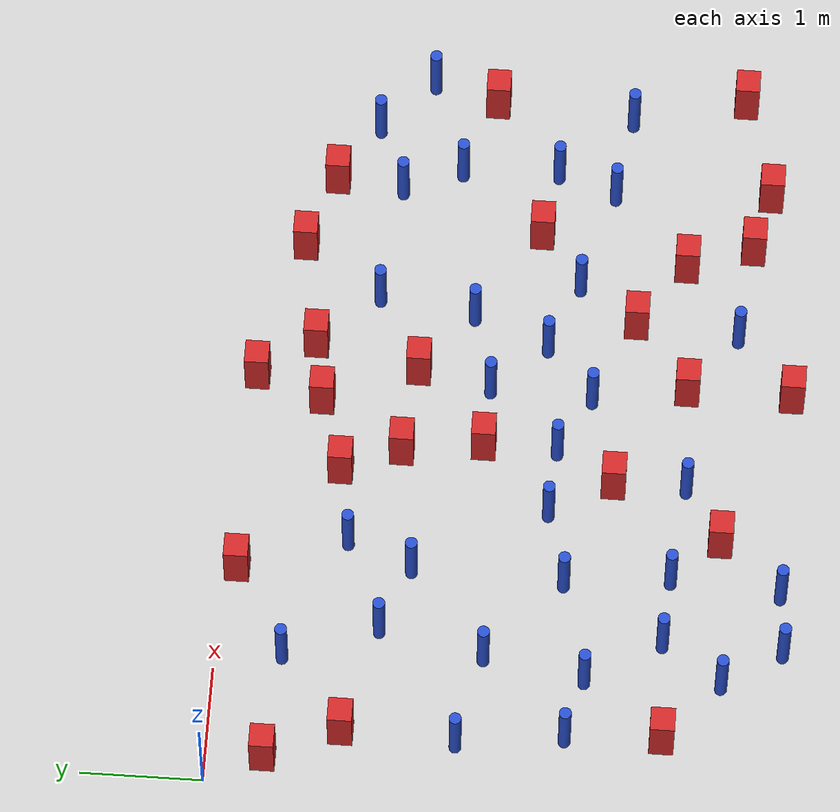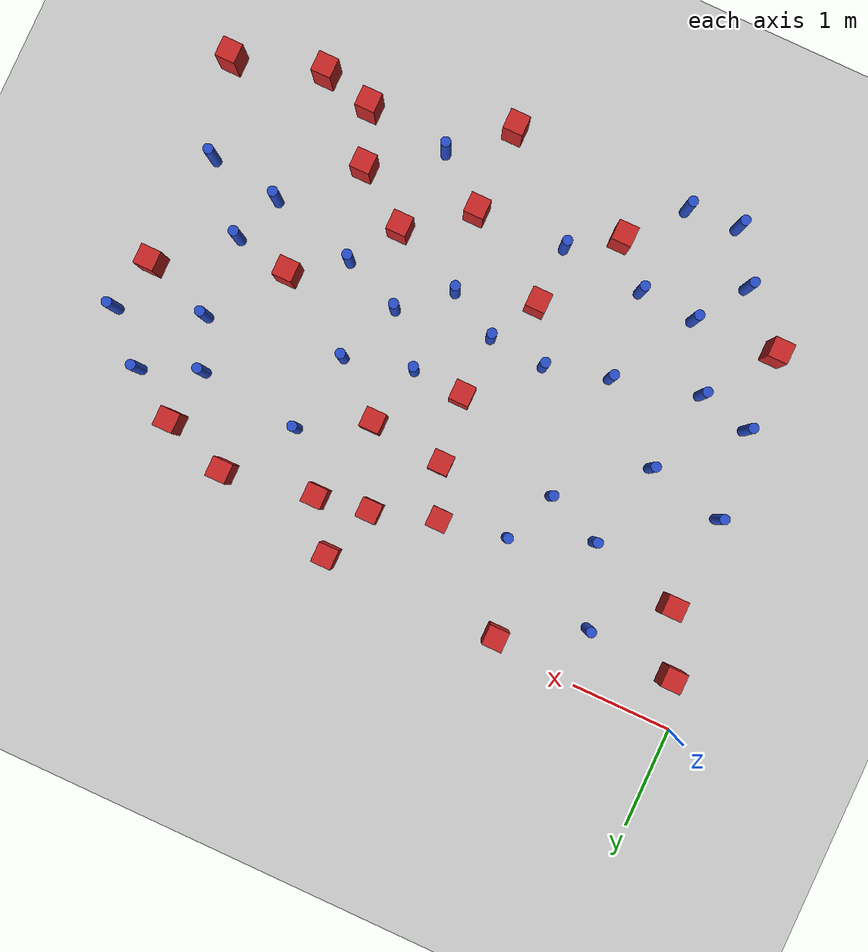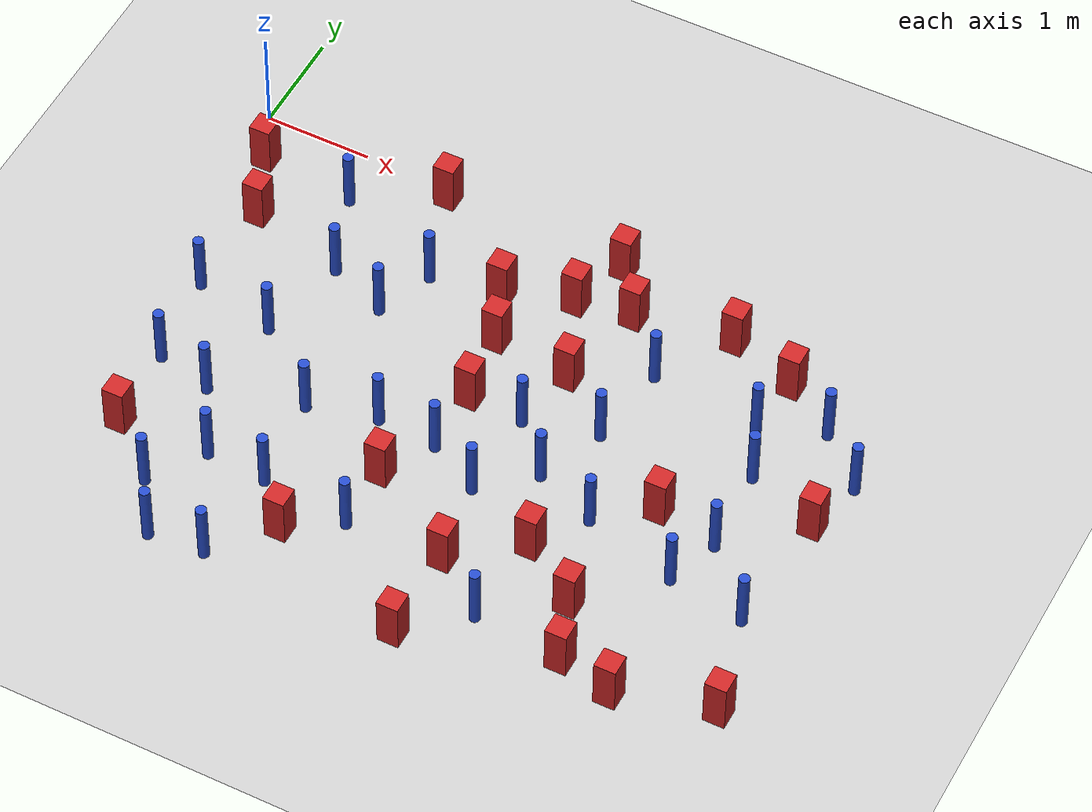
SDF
<sdf version="1.6">
 <world name="default">
  <model name="ground_plane">
   <static>1</static>
   <link name="link">
    <collision name="collision">
     <geometry><plane><normal>0 0 1</normal><size>100 100</size></plane></geometry>
     <surface><friction><ode><mu>100</mu><mu2>50</mu2></ode></friction></surface>
    </collision>
    <visual name="visual">
     <cast_shadows>0</cast_shadows>
     <geometry><plane><normal>0 0 1</normal><size>100 100</size></plane></geometry>
     <material>
      <ambient>1.0 1.0 1.0 1.0</ambient>
      <diffuse>0.8 0.8 0.8 1.0</diffuse>
      <specular>0.01 0.01 0.01 1.000000</specular>
     </material>
    </visual>
   </link>
  </model>
  <model name="square_post_obstacle4">
   <static>true</static>
   <pose>0.591381948 -3.68222701026 1.91545236811e-07 -7.35059704564e-06 1.12565212e-07 2.39332434364e-05</pose>
   <link name="link">
    <pose>0 0 0.25 0 -0 0</pose>
    <inertial>
     <mass>100</mass>
     <inertia>
      <ixx>0.166667</ixx>
      <ixy>0</ixy>
      <ixz>0</ixz>
      <iyy>0.166667</iyy>
      <iyz>0</iyz>
      <izz>0.166667</izz>
     </inertia>
    </inertial>
    <collision name="collision"><geometry><box><size>.2 .2 .5</size></box></geometry></collision>
    <visual name="visual">
     <geometry><box><size>.2 .2 .5</size></box></geometry>
     <material>
      <script><name>Gazebo/Red</name><uri>file://media/materials/scripts/gazebo.material</uri></script>
     </material>
    </visual>
   </link>
  </model>
  <model name="pole_obstacle14">
   <static>true</static>
   <pose>3.11258376095 -2.67955882009 7.38925637345e-09 -8.47170692798e-08 1.24976764939e-08 -1.74513093025e-07</pose>
   <link name="link">
    <pose>0 0 0.3 0 -0 0</pose>
    <inertial>
     <mass>1</mass>
     <inertia><ixx>0.145833</ixx><ixy>0</ixy><ixz>0</ixz><iyy>0.145833</iyy><iyz>0</iyz><izz>0.125</izz></inertia>
    </inertial>
    <collision name="collision">
     <geometry><cylinder><radius>0.05</radius><length>.6</length></cylinder></geometry>
    </collision>
    <visual name="visual">
     <geometry><cylinder><radius>0.05</radius><length>.6</length></cylinder></geometry>
     <material>
      <script><name>Gazebo/Blue</name><uri>file://media/materials/scripts/gazebo.material</uri></script>
     </material>
    </visual>
   </link>
  </model>
  <model name="pole_obstacle28">
   <static>true</static>
   <pose>4.43226692969 -1.12067069874 7.38925637345e-09 -8.471706928e-08 1.24976765134e-08 -1.74513093015e-07</pose>
   <link name="link">
    <pose>0 0 0.3 0 -0 0</pose>
    <inertial>
     <mass>1</mass>
     <inertia><ixx>0.145833</ixx><ixy>0</ixy><ixz>0</ixz><iyy>0.145833</iyy><iyz>0</iyz><izz>0.125</izz></inertia>
    </inertial>
    <collision name="collision">
     <geometry><cylinder><radius>0.05</radius><length>.6</length></cylinder></geometry>
    </collision>
    <visual name="visual">
     <geometry><cylinder><radius>0.05</radius><length>.6</length></cylinder></geometry>
     <material>
      <script><name>Gazebo/Blue</name><uri>file://media/materials/scripts/gazebo.material</uri></script>
     </material>
    </visual>
   </link>
  </model>
  <model name="pole_obstacle37">
   <static>true</static>
   <pose>2.17845702507 -1.01704458703 7.38925637345e-09 -8.471706928e-08 1.2497676513e-08 -1.74513093016e-07</pose>
   <link name="link">
    <pose>0 0 0.3 0 -0 0</pose>
    <inertial>
     <mass>1</mass>
     <inertia><ixx>0.145833</ixx><ixy>0</ixy><ixz>0</ixz><iyy>0.145833</iyy><iyz>0</iyz><izz>0.125</izz></inertia>
    </inertial>
    <collision name="collision">
     <geometry><cylinder><radius>0.05</radius><length>.6</length></cylinder></geometry>
    </collision>
    <visual name="visual">
     <geometry><cylinder><radius>0.05</radius><length>.6</length></cylinder></geometry>
     <material>
      <script><name>Gazebo/Blue</name><uri>file://media/materials/scripts/gazebo.material</uri></script>
     </material>
    </visual>
   </link>
  </model>
  <model name="pole_obstacle39">
   <static>true</static>
   <pose>6.23566429272 -3.13608479678 7.38925637345e-09 -8.47170692798e-08 1.24976764937e-08 -1.74513093023e-07</pose>
   <link name="link">
    <pose>0 0 0.3 0 -0 0</pose>
    <inertial>
     <mass>1</mass>
     <inertia><ixx>0.145833</ixx><ixy>0</ixy><ixz>0</ixz><iyy>0.145833</iyy><iyz>0</iyz><izz>0.125</izz></inertia>
    </inertial>
    <collision name="collision">
     <geometry><cylinder><radius>0.05</radius><length>.6</length></cylinder></geometry>
    </collision>
    <visual name="visual">
     <geometry><cylinder><radius>0.05</radius><length>.6</length></cylinder></geometry>
     <material>
      <script><name>Gazebo/Blue</name><uri>file://media/materials/scripts/gazebo.material</uri></script>
     </material>
    </visual>
   </link>
  </model>
  <model name="pole_obstacle44">
   <static>true</static>
   <pose>1.92040717514 -2.80527896279 7.38925637345e-09 -8.47170692799e-08 1.24976765053e-08 -1.74513093017e-07</pose>
   <link name="link">
    <pose>0 0 0.3 0 -0 0</pose>
    <inertial>
     <mass>1</mass>
     <inertia><ixx>0.145833</ixx><ixy>0</ixy><ixz>0</ixz><iyy>0.145833</iyy><iyz>0</iyz><izz>0.125</izz></inertia>
    </inertial>
    <collision name="collision">
     <geometry><cylinder><radius>0.05</radius><length>.6</length></cylinder></geometry>
    </collision>
    <visual name="visual">
     <geometry><cylinder><radius>0.05</radius><length>.6</length></cylinder></geometry>
     <material>
      <script><name>Gazebo/Blue</name><uri>file://media/materials/scripts/gazebo.material</uri></script>
     </material>
    </visual>
   </link>
  </model>
  <model name="pole_obstacle50">
   <static>true</static>
   <pose>2.00447578282 -3.67813593714 7.38925637345e-09 -8.47170692797e-08 1.24976764891e-08 -1.74513093027e-07</pose>
   <link name="link">
    <pose>0 0 0.3 0 -0 0</pose>
    <inertial>
     <mass>1</mass>
     <inertia><ixx>0.145833</ixx><ixy>0</ixy><ixz>0</ixz><iyy>0.145833</iyy><iyz>0</iyz><izz>0.125</izz></inertia>
    </inertial>
    <collision name="collision">
     <geometry><cylinder><radius>0.05</radius><length>.6</length></cylinder></geometry>
    </collision>
    <visual name="visual">
     <geometry><cylinder><radius>0.05</radius><length>.6</length></cylinder></geometry>
     <material>
      <script><name>Gazebo/Blue</name><uri>file://media/materials/scripts/gazebo.material</uri></script>
     </material>
    </visual>
   </link>
  </model>
  <model name="square_post_obstacle63">
   <static>true</static>
   <pose>3.74047074823 -3.72328140833 1.91545236811e-07 -7.35059704564e-06 1.12565212e-07 2.39332434364e-05</pose>
   <link name="link">
    <pose>0 0 0.25 0 -0 0</pose>
    <inertial>
     <mass>100</mass>
     <inertia>
      <ixx>0.166667</ixx>
      <ixy>0</ixy>
      <ixz>0</ixz>
      <iyy>0.166667</iyy>
      <iyz>0</iyz>
      <izz>0.166667</izz>
     </inertia>
    </inertial>
    <collision name="collision"><geometry><box><size>.2 .2 .5</size></box></geometry></collision>
    <visual name="visual">
     <geometry><box><size>.2 .2 .5</size></box></geometry>
     <material>
      <script><name>Gazebo/Red</name><uri>file://media/materials/scripts/gazebo.material</uri></script>
     </material>
    </visual>
   </link>
  </model>
  <model name="pole_obstacle61">
   <static>true</static>
   <pose>5.52131830112 -3.02730431551 7.38925637345e-09 -8.47170692798e-08 1.24976764937e-08 -1.74513093023e-07</pose>
   <link name="link">
    <pose>0 0 0.3 0 -0 0</pose>
    <inertial>
     <mass>1</mass>
     <inertia><ixx>0.145833</ixx><ixy>0</ixy><ixz>0</ixz><iyy>0.145833</iyy><iyz>0</iyz><izz>0.125</izz></inertia>
    </inertial>
    <collision name="collision">
     <geometry><cylinder><radius>0.05</radius><length>.6</length></cylinder></geometry>
    </collision>
    <visual name="visual">
     <geometry><cylinder><radius>0.05</radius><length>.6</length></cylinder></geometry>
     <material>
      <script><name>Gazebo/Blue</name><uri>file://media/materials/scripts/gazebo.material</uri></script>
     </material>
    </visual>
   </link>
  </model>
  <model name="square_post_obstacle65">
   <static>true</static>
   <pose>3.65642023419 -0.153123214816 1.91545236811e-07 -7.35059704564e-06 1.12565212e-07 2.39332434364e-05</pose>
   <link name="link">
    <pose>0 0 0.25 0 -0 0</pose>
    <inertial>
     <mass>100</mass>
     <inertia>
      <ixx>0.166667</ixx>
      <ixy>0</ixy>
      <ixz>0</ixz>
      <iyy>0.166667</iyy>
      <iyz>0</iyz>
      <izz>0.166667</izz>
     </inertia>
    </inertial>
    <collision name="collision"><geometry><box><size>.2 .2 .5</size></box></geometry></collision>
    <visual name="visual">
     <geometry><box><size>.2 .2 .5</size></box></geometry>
     <material>
      <script><name>Gazebo/Red</name><uri>file://media/materials/scripts/gazebo.material</uri></script>
     </material>
    </visual>
   </link>
  </model>
  <model name="pole_obstacle67">
   <static>true</static>
   <pose>1.40788522867 -1.32780624625 7.38925637345e-09 -8.471706928e-08 1.24976765079e-08 -1.74513093017e-07</pose>
   <link name="link">
    <pose>0 0 0.3 0 -0 0</pose>
    <inertial>
     <mass>1</mass>
     <inertia><ixx>0.145833</ixx><ixy>0</ixy><ixz>0</ixz><iyy>0.145833</iyy><iyz>0</iyz><izz>0.125</izz></inertia>
    </inertial>
    <collision name="collision">
     <geometry><cylinder><radius>0.05</radius><length>.6</length></cylinder></geometry>
    </collision>
    <visual name="visual">
     <geometry><cylinder><radius>0.05</radius><length>.6</length></cylinder></geometry>
     <material>
      <script><name>Gazebo/Blue</name><uri>file://media/materials/scripts/gazebo.material</uri></script>
     </material>
    </visual>
   </link>
  </model>
  <model name="square_post_obstacle71">
   <static>true</static>
   <pose>4.33298151807 -3.26898588142 1.91545236811e-07 -7.35059704564e-06 1.12565212e-07 2.39332434364e-05</pose>
   <link name="link">
    <pose>0 0 0.25 0 -0 0</pose>
    <inertial>
     <mass>100</mass>
     <inertia>
      <ixx>0.166667</ixx>
      <ixy>0</ixy>
      <ixz>0</ixz>
      <iyy>0.166667</iyy>
      <iyz>0</iyz>
      <izz>0.166667</izz>
     </inertia>
    </inertial>
    <collision name="collision"><geometry><box><size>.2 .2 .5</size></box></geometry></collision>
    <visual name="visual">
     <geometry><box><size>.2 .2 .5</size></box></geometry>
     <material>
      <script><name>Gazebo/Red</name><uri>file://media/materials/scripts/gazebo.material</uri></script>
     </material>
    </visual>
   </link>
  </model>
  <model name="square_post_obstacle74">
   <static>true</static>
   <pose>5.602487614 -4.33225980927 1.91545236811e-07 -7.35059704564e-06 1.12565212e-07 2.39332434364e-05</pose>
   <link name="link">
    <pose>0 0 0.25 0 -0 0</pose>
    <inertial>
     <mass>100</mass>
     <inertia>
      <ixx>0.166667</ixx>
      <ixy>0</ixy>
      <ixz>0</ixz>
      <iyy>0.166667</iyy>
      <iyz>0</iyz>
      <izz>0.166667</izz>
     </inertia>
    </inertial>
    <collision name="collision"><geometry><box><size>.2 .2 .5</size></box></geometry></collision>
    <visual name="visual">
     <geometry><box><size>.2 .2 .5</size></box></geometry>
     <material>
      <script><name>Gazebo/Red</name><uri>file://media/materials/scripts/gazebo.material</uri></script>
     </material>
    </visual>
   </link>
  </model>
  <model name="pole_obstacle71">
   <static>true</static>
   <pose>4.3102893246 -1.91938529184 7.38925637345e-09 -8.471706928e-08 1.24976765134e-08 -1.74513093015e-07</pose>
   <link name="link">
    <pose>0 0 0.3 0 -0 0</pose>
    <inertial>
     <mass>1</mass>
     <inertia><ixx>0.145833</ixx><ixy>0</ixy><ixz>0</ixz><iyy>0.145833</iyy><iyz>0</iyz><izz>0.125</izz></inertia>
    </inertial>
    <collision name="collision">
     <geometry><cylinder><radius>0.05</radius><length>.6</length></cylinder></geometry>
    </collision>
    <visual name="visual">
     <geometry><cylinder><radius>0.05</radius><length>.6</length></cylinder></geometry>
     <material>
      <script><name>Gazebo/Blue</name><uri>file://media/materials/scripts/gazebo.material</uri></script>
     </material>
    </visual>
   </link>
  </model>
  <model name="pole_obstacle78">
   <static>true</static>
   <pose>4.2529713792 -4.12390057666 7.38925637345e-09 -8.47170692796e-08 1.24976764786e-08 -1.74513093032e-07</pose>
   <link name="link">
    <pose>0 0 0.3 0 -0 0</pose>
    <inertial>
     <mass>1</mass>
     <inertia><ixx>0.145833</ixx><ixy>0</ixy><ixz>0</ixz><iyy>0.145833</iyy><iyz>0</iyz><izz>0.125</izz></inertia>
    </inertial>
    <collision name="collision">
     <geometry><cylinder><radius>0.05</radius><length>.6</length></cylinder></geometry>
    </collision>
    <visual name="visual">
     <geometry><cylinder><radius>0.05</radius><length>.6</length></cylinder></geometry>
     <material>
      <script><name>Gazebo/Blue</name><uri>file://media/materials/scripts/gazebo.material</uri></script>
     </material>
    </visual>
   </link>
  </model>
  <model name="square_post_obstacle78">
   <static>true</static>
   <pose>6.47995073223 -4.08024581609 1.91545236811e-07 -7.35059704564e-06 1.12565212e-07 2.39332434364e-05</pose>
   <link name="link">
    <pose>0 0 0.25 0 -0 0</pose>
    <inertial>
     <mass>100</mass>
     <inertia>
      <ixx>0.166667</ixx>
      <ixy>0</ixy>
      <ixz>0</ixz>
      <iyy>0.166667</iyy>
      <iyz>0</iyz>
      <izz>0.166667</izz>
     </inertia>
    </inertial>
    <collision name="collision"><geometry><box><size>.2 .2 .5</size></box></geometry></collision>
    <visual name="visual">
     <geometry><box><size>.2 .2 .5</size></box></geometry>
     <material>
      <script><name>Gazebo/Red</name><uri>file://media/materials/scripts/gazebo.material</uri></script>
     </material>
    </visual>
   </link>
  </model>
  <model name="pole_obstacle89">
   <static>true</static>
   <pose>5.66213381733 -1.72991225972 7.38925637345e-09 -8.471706928e-08 1.24976765134e-08 -1.74513093015e-07</pose>
   <link name="link">
    <pose>0 0 0.3 0 -0 0</pose>
    <inertial>
     <mass>1</mass>
     <inertia><ixx>0.145833</ixx><ixy>0</ixy><ixz>0</ixz><iyy>0.145833</iyy><iyz>0</iyz><izz>0.125</izz></inertia>
    </inertial>
    <collision name="collision">
     <geometry><cylinder><radius>0.05</radius><length>.6</length></cylinder></geometry>
    </collision>
    <visual name="visual">
     <geometry><cylinder><radius>0.05</radius><length>.6</length></cylinder></geometry>
     <material>
      <script><name>Gazebo/Blue</name><uri>file://media/materials/scripts/gazebo.material</uri></script>
     </material>
    </visual>
   </link>
  </model>
  <model name="square_post_obstacle88">
   <static>true</static>
   <pose>4.89028319784 -3.65988234122 1.91545236811e-07 -7.35059704564e-06 1.12565212e-07 2.39332434364e-05</pose>
   <link name="link">
    <pose>0 0 0.25 0 -0 0</pose>
    <inertial>
     <mass>100</mass>
     <inertia>
      <ixx>0.166667</ixx>
      <ixy>0</ixy>
      <ixz>0</ixz>
      <iyy>0.166667</iyy>
      <iyz>0</iyz>
      <izz>0.166667</izz>
     </inertia>
    </inertial>
    <collision name="collision"><geometry><box><size>.2 .2 .5</size></box></geometry></collision>
    <visual name="visual">
     <geometry><box><size>.2 .2 .5</size></box></geometry>
     <material>
      <script><name>Gazebo/Red</name><uri>file://media/materials/scripts/gazebo.material</uri></script>
     </material>
    </visual>
   </link>
  </model>
  <model name="pole_obstacle111">
   <static>true</static>
   <pose>3.64526870127 -2.0918814273 7.38925637345e-09 -8.47170692798e-08 1.24976764939e-08 -1.74513093025e-07</pose>
   <link name="link">
    <pose>0 0 0.3 0 -0 0</pose>
    <inertial>
     <mass>1</mass>
     <inertia><ixx>0.145833</ixx><ixy>0</ixy><ixz>0</ixz><iyy>0.145833</iyy><iyz>0</iyz><izz>0.125</izz></inertia>
    </inertial>
    <collision name="collision">
     <geometry><cylinder><radius>0.05</radius><length>.6</length></cylinder></geometry>
    </collision>
    <visual name="visual">
     <geometry><cylinder><radius>0.05</radius><length>.6</length></cylinder></geometry>
     <material>
      <script><name>Gazebo/Blue</name><uri>file://media/materials/scripts/gazebo.material</uri></script>
     </material>
    </visual>
   </link>
  </model>
  <model name="pole_obstacle123">
   <static>true</static>
   <pose>0.436060722084 -2.01464768148 7.38925637345e-09 -8.47170692798e-08 1.24976764954e-08 -1.74513093022e-07</pose>
   <link name="link">
    <pose>0 0 0.3 0 -0 0</pose>
    <inertial>
     <mass>1</mass>
     <inertia><ixx>0.145833</ixx><ixy>0</ixy><ixz>0</ixz><iyy>0.145833</iyy><iyz>0</iyz><izz>0.125</izz></inertia>
    </inertial>
    <collision name="collision">
     <geometry><cylinder><radius>0.05</radius><length>.6</length></cylinder></geometry>
    </collision>
    <visual name="visual">
     <geometry><cylinder><radius>0.05</radius><length>.6</length></cylinder></geometry>
     <material>
      <script><name>Gazebo/Blue</name><uri>file://media/materials/scripts/gazebo.material</uri></script>
     </material>
    </visual>
   </link>
  </model>
  <model name="pole_obstacle125">
   <static>true</static>
   <pose>5.45775709832 -1.23795774924 7.38925637345e-09 -8.471706928e-08 1.24976765134e-08 -1.74513093015e-07</pose>
   <link name="link">
    <pose>0 0 0.3 0 -0 0</pose>
    <inertial>
     <mass>1</mass>
     <inertia><ixx>0.145833</ixx><ixy>0</ixy><ixz>0</ixz><iyy>0.145833</iyy><iyz>0</iyz><izz>0.125</izz></inertia>
    </inertial>
    <collision name="collision">
     <geometry><cylinder><radius>0.05</radius><length>.6</length></cylinder></geometry>
    </collision>
    <visual name="visual">
     <geometry><cylinder><radius>0.05</radius><length>.6</length></cylinder></geometry>
     <material>
      <script><name>Gazebo/Blue</name><uri>file://media/materials/scripts/gazebo.material</uri></script>
     </material>
    </visual>
   </link>
  </model>
  <model name="square_post_obstacle116">
   <static>true</static>
   <pose>3.46116778721 -0.706828195764 1.91545236811e-07 -7.35059704564e-06 1.12565212e-07 2.39332434364e-05</pose>
   <link name="link">
    <pose>0 0 0.25 0 -0 0</pose>
    <inertial>
     <mass>100</mass>
     <inertia>
      <ixx>0.166667</ixx>
      <ixy>0</ixy>
      <ixz>0</ixz>
      <iyy>0.166667</iyy>
      <iyz>0</iyz>
      <izz>0.166667</izz>
     </inertia>
    </inertial>
    <collision name="collision"><geometry><box><size>.2 .2 .5</size></box></geometry></collision>
    <visual name="visual">
     <geometry><box><size>.2 .2 .5</size></box></geometry>
     <material>
      <script><name>Gazebo/Red</name><uri>file://media/materials/scripts/gazebo.material</uri></script>
     </material>
    </visual>
   </link>
  </model>
  <model name="pole_obstacle136">
   <static>true</static>
   <pose>2.54762614891 -2.64150156869 7.38925637345e-09 -8.47170692798e-08 1.24976764939e-08 -1.74513093025e-07</pose>
   <link name="link">
    <pose>0 0 0.3 0 -0 0</pose>
    <inertial>
     <mass>1</mass>
     <inertia><ixx>0.145833</ixx><ixy>0</ixy><ixz>0</ixz><iyy>0.145833</iyy><iyz>0</iyz><izz>0.125</izz></inertia>
    </inertial>
    <collision name="collision">
     <geometry><cylinder><radius>0.05</radius><length>.6</length></cylinder></geometry>
    </collision>
    <visual name="visual">
     <geometry><cylinder><radius>0.05</radius><length>.6</length></cylinder></geometry>
     <material>
      <script><name>Gazebo/Blue</name><uri>file://media/materials/scripts/gazebo.material</uri></script>
     </material>
    </visual>
   </link>
  </model>
  <model name="square_post_obstacle121">
   <static>true</static>
   <pose>3.98112811571 -0.620218554285 1.91545236811e-07 -7.35059704564e-06 1.12565212e-07 2.39332434364e-05</pose>
   <link name="link">
    <pose>0 0 0.25 0 -0 0</pose>
    <inertial>
     <mass>100</mass>
     <inertia>
      <ixx>0.166667</ixx>
      <ixy>0</ixy>
      <ixz>0</ixz>
      <iyy>0.166667</iyy>
      <iyz>0</iyz>
      <izz>0.166667</izz>
     </inertia>
    </inertial>
    <collision name="collision"><geometry><box><size>.2 .2 .5</size></box></geometry></collision>
    <visual name="visual">
     <geometry><box><size>.2 .2 .5</size></box></geometry>
     <material>
      <script><name>Gazebo/Red</name><uri>file://media/materials/scripts/gazebo.material</uri></script>
     </material>
    </visual>
   </link>
  </model>
  <model name="square_post_obstacle122">
   <static>true</static>
   <pose>0.224615007999 -0.467737239477 1.91545236811e-07 -7.35059704564e-06 1.12565212e-07 2.39332434364e-05</pose>
   <link name="link">
    <pose>0 0 0.25 0 -0 0</pose>
    <inertial>
     <mass>100</mass>
     <inertia>
      <ixx>0.166667</ixx>
      <ixy>0</ixy>
      <ixz>0</ixz>
      <iyy>0.166667</iyy>
      <iyz>0</iyz>
      <izz>0.166667</izz>
     </inertia>
    </inertial>
    <collision name="collision"><geometry><box><size>.2 .2 .5</size></box></geometry></collision>
    <visual name="visual">
     <geometry><box><size>.2 .2 .5</size></box></geometry>
     <material>
      <script><name>Gazebo/Red</name><uri>file://media/materials/scripts/gazebo.material</uri></script>
     </material>
    </visual>
   </link>
  </model>
  <model name="pole_obstacle139">
   <static>true</static>
   <pose>5.69550595124 -2.53905012527 7.38925637345e-09 -8.47170692798e-08 1.24976764937e-08 -1.74513093023e-07</pose>
   <link name="link">
    <pose>0 0 0.3 0 -0 0</pose>
    <inertial>
     <mass>1</mass>
     <inertia><ixx>0.145833</ixx><ixy>0</ixy><ixz>0</ixz><iyy>0.145833</iyy><iyz>0</iyz><izz>0.125</izz></inertia>
    </inertial>
    <collision name="collision">
     <geometry><cylinder><radius>0.05</radius><length>.6</length></cylinder></geometry>
    </collision>
    <visual name="visual">
     <geometry><cylinder><radius>0.05</radius><length>.6</length></cylinder></geometry>
     <material>
      <script><name>Gazebo/Blue</name><uri>file://media/materials/scripts/gazebo.material</uri></script>
     </material>
    </visual>
   </link>
  </model>
  <model name="pole_obstacle145">
   <static>true</static>
   <pose>1.12244461927 -0.552726503955 7.38925637345e-09 -8.47170692799e-08 1.24976765075e-08 -1.74513093017e-07</pose>
   <link name="link">
    <pose>0 0 0.3 0 -0 0</pose>
    <inertial>
     <mass>1</mass>
     <inertia><ixx>0.145833</ixx><ixy>0</ixy><ixz>0</ixz><iyy>0.145833</iyy><iyz>0</iyz><izz>0.125</izz></inertia>
    </inertial>
    <collision name="collision">
     <geometry><cylinder><radius>0.05</radius><length>.6</length></cylinder></geometry>
    </collision>
    <visual name="visual">
     <geometry><cylinder><radius>0.05</radius><length>.6</length></cylinder></geometry>
     <material>
      <script><name>Gazebo/Blue</name><uri>file://media/materials/scripts/gazebo.material</uri></script>
     </material>
    </visual>
   </link>
  </model>
  <model name="pole_obstacle148">
   <static>true</static>
   <pose>1.09506958815 -4.13864734297 7.38925637345e-09 -8.47170692799e-08 1.24976765033e-08 -1.74513093018e-07</pose>
   <link name="link">
    <pose>0 0 0.3 0 -0 0</pose>
    <inertial>
     <mass>1</mass>
     <inertia><ixx>0.145833</ixx><ixy>0</ixy><ixz>0</ixz><iyy>0.145833</iyy><iyz>0</iyz><izz>0.125</izz></inertia>
    </inertial>
    <collision name="collision">
     <geometry><cylinder><radius>0.05</radius><length>.6</length></cylinder></geometry>
    </collision>
    <visual name="visual">
     <geometry><cylinder><radius>0.05</radius><length>.6</length></cylinder></geometry>
     <material>
      <script><name>Gazebo/Blue</name><uri>file://media/materials/scripts/gazebo.material</uri></script>
     </material>
    </visual>
   </link>
  </model>
  <model name="square_post_obstacle137">
   <static>true</static>
   <pose>5.12151186016 -2.43352549917 1.91545236811e-07 -7.35059704564e-06 1.12565212e-07 2.39332434364e-05</pose>
   <link name="link">
    <pose>0 0 0.25 0 -0 0</pose>
    <inertial>
     <mass>100</mass>
     <inertia>
      <ixx>0.166667</ixx>
      <ixy>0</ixy>
      <ixz>0</ixz>
      <iyy>0.166667</iyy>
      <iyz>0</iyz>
      <izz>0.166667</izz>
     </inertia>
    </inertial>
    <collision name="collision"><geometry><box><size>.2 .2 .5</size></box></geometry></collision>
    <visual name="visual">
     <geometry><box><size>.2 .2 .5</size></box></geometry>
     <material>
      <script><name>Gazebo/Red</name><uri>file://media/materials/scripts/gazebo.material</uri></script>
     </material>
    </visual>
   </link>
  </model>
  <model name="pole_obstacle149">
   <static>true</static>
   <pose>6.03105329881 -1.00898455496 7.38925637345e-09 -8.471706928e-08 1.24976765101e-08 -1.74513093015e-07</pose>
   <link name="link">
    <pose>0 0 0.3 0 -0 0</pose>
    <inertial>
     <mass>1</mass>
     <inertia><ixx>0.145833</ixx><ixy>0</ixy><ixz>0</ixz><iyy>0.145833</iyy><iyz>0</iyz><izz>0.125</izz></inertia>
    </inertial>
    <collision name="collision">
     <geometry><cylinder><radius>0.05</radius><length>.6</length></cylinder></geometry>
    </collision>
    <visual name="visual">
     <geometry><cylinder><radius>0.05</radius><length>.6</length></cylinder></geometry>
     <material>
      <script><name>Gazebo/Blue</name><uri>file://media/materials/scripts/gazebo.material</uri></script>
     </material>
    </visual>
   </link>
  </model>
  <model name="pole_obstacle153">
   <static>true</static>
   <pose>1.96225716609 -1.55211361322 7.38925637345e-09 -8.47170692795e-08 1.24976764702e-08 -1.74513093038e-07</pose>
   <link name="link">
    <pose>0 0 0.3 0 -0 0</pose>
    <inertial>
     <mass>1</mass>
     <inertia><ixx>0.145833</ixx><ixy>0</ixy><ixz>0</ixz><iyy>0.145833</iyy><iyz>0</iyz><izz>0.125</izz></inertia>
    </inertial>
    <collision name="collision">
     <geometry><cylinder><radius>0.05</radius><length>.6</length></cylinder></geometry>
    </collision>
    <visual name="visual">
     <geometry><cylinder><radius>0.05</radius><length>.6</length></cylinder></geometry>
     <material>
      <script><name>Gazebo/Blue</name><uri>file://media/materials/scripts/gazebo.material</uri></script>
     </material>
    </visual>
   </link>
  </model>
  <model name="pole_obstacle155">
   <static>true</static>
   <pose>1.92795217252 -4.58420670718 7.38925637345e-09 -8.47170692799e-08 1.24976765033e-08 -1.74513093018e-07</pose>
   <link name="link">
    <pose>0 0 0.3 0 -0 0</pose>
    <inertial>
     <mass>1</mass>
     <inertia><ixx>0.145833</ixx><ixy>0</ixy><ixz>0</ixz><iyy>0.145833</iyy><iyz>0</iyz><izz>0.125</izz></inertia>
    </inertial>
    <collision name="collision">
     <geometry><cylinder><radius>0.05</radius><length>.6</length></cylinder></geometry>
    </collision>
    <visual name="visual">
     <geometry><cylinder><radius>0.05</radius><length>.6</length></cylinder></geometry>
     <material>
      <script><name>Gazebo/Blue</name><uri>file://media/materials/scripts/gazebo.material</uri></script>
     </material>
    </visual>
   </link>
  </model>
  <model name="square_post_obstacle146">
   <static>true</static>
   <pose>3.12995072762 -2.06890703029 1.91545236811e-07 -7.35059704564e-06 1.12565212e-07 2.39332434364e-05</pose>
   <link name="link">
    <pose>0 0 0.25 0 -0 0</pose>
    <inertial>
     <mass>100</mass>
     <inertia>
      <ixx>0.166667</ixx>
      <ixy>0</ixy>
      <ixz>0</ixz>
      <iyy>0.166667</iyy>
      <iyz>0</iyz>
      <izz>0.166667</izz>
     </inertia>
    </inertial>
    <collision name="collision"><geometry><box><size>.2 .2 .5</size></box></geometry></collision>
    <visual name="visual">
     <geometry><box><size>.2 .2 .5</size></box></geometry>
     <material>
      <script><name>Gazebo/Red</name><uri>file://media/materials/scripts/gazebo.material</uri></script>
     </material>
    </visual>
   </link>
  </model>
  <model name="square_post_obstacle151">
   <static>true</static>
   <pose>3.73533360632 -4.5928505232 1.91545236811e-07 -7.35059704564e-06 1.12565212e-07 2.39332434364e-05</pose>
   <link name="link">
    <pose>0 0 0.25 0 -0 0</pose>
    <inertial>
     <mass>100</mass>
     <inertia>
      <ixx>0.166667</ixx>
      <ixy>0</ixy>
      <ixz>0</ixz>
      <iyy>0.166667</iyy>
      <iyz>0</iyz>
      <izz>0.166667</izz>
     </inertia>
    </inertial>
    <collision name="collision"><geometry><box><size>.2 .2 .5</size></box></geometry></collision>
    <visual name="visual">
     <geometry><box><size>.2 .2 .5</size></box></geometry>
     <material>
      <script><name>Gazebo/Red</name><uri>file://media/materials/scripts/gazebo.material</uri></script>
     </material>
    </visual>
   </link>
  </model>
  <model name="pole_obstacle159">
   <static>true</static>
   <pose>0.54365463091 -2.89551934115 7.38925637345e-09 -8.471706928e-08 1.2497676512e-08 -1.74513093015e-07</pose>
   <link name="link">
    <pose>0 0 0.3 0 -0 0</pose>
    <inertial>
     <mass>1</mass>
     <inertia><ixx>0.145833</ixx><ixy>0</ixy><ixz>0</ixz><iyy>0.145833</iyy><iyz>0</iyz><izz>0.125</izz></inertia>
    </inertial>
    <collision name="collision">
     <geometry><cylinder><radius>0.05</radius><length>.6</length></cylinder></geometry>
    </collision>
    <visual name="visual">
     <geometry><cylinder><radius>0.05</radius><length>.6</length></cylinder></geometry>
     <material>
      <script><name>Gazebo/Blue</name><uri>file://media/materials/scripts/gazebo.material</uri></script>
     </material>
    </visual>
   </link>
  </model>
  <model name="square_post_obstacle158">
   <static>true</static>
   <pose>6.34246900201 -1.98447304851 1.91545236811e-07 -7.35059704564e-06 1.12565212e-07 2.39332434364e-05</pose>
   <link name="link">
    <pose>0 0 0.25 0 -0 0</pose>
    <inertial>
     <mass>100</mass>
     <inertia>
      <ixx>0.166667</ixx>
      <ixy>0</ixy>
      <ixz>0</ixz>
      <iyy>0.166667</iyy>
      <iyz>0</iyz>
      <izz>0.166667</izz>
     </inertia>
    </inertial>
    <collision name="collision"><geometry><box><size>.2 .2 .5</size></box></geometry></collision>
    <visual name="visual">
     <geometry><box><size>.2 .2 .5</size></box></geometry>
     <material>
      <script><name>Gazebo/Red</name><uri>file://media/materials/scripts/gazebo.material</uri></script>
     </material>
    </visual>
   </link>
  </model>
  <model name="square_post_obstacle159">
   <static>true</static>
   <pose>0.494212178846 -1.0802834762 1.91545236811e-07 -7.35059704564e-06 1.12565212e-07 2.39332434364e-05</pose>
   <link name="link">
    <pose>0 0 0.25 0 -0 0</pose>
    <inertial>
     <mass>100</mass>
     <inertia>
      <ixx>0.166667</ixx>
      <ixy>0</ixy>
      <ixz>0</ixz>
      <iyy>0.166667</iyy>
      <iyz>0</iyz>
      <izz>0.166667</izz>
     </inertia>
    </inertial>
    <collision name="collision"><geometry><box><size>.2 .2 .5</size></box></geometry></collision>
    <visual name="visual">
     <geometry><box><size>.2 .2 .5</size></box></geometry>
     <material>
      <script><name>Gazebo/Red</name><uri>file://media/materials/scripts/gazebo.material</uri></script>
     </material>
    </visual>
   </link>
  </model>
  <model name="pole_obstacle170">
   <static>true</static>
   <pose>1.41088406296 -4.62848880067 7.38925637345e-09 -8.47170692799e-08 1.24976765033e-08 -1.74513093018e-07</pose>
   <link name="link">
    <pose>0 0 0.3 0 -0 0</pose>
    <inertial>
     <mass>1</mass>
     <inertia><ixx>0.145833</ixx><ixy>0</ixy><ixz>0</ixz><iyy>0.145833</iyy><iyz>0</iyz><izz>0.125</izz></inertia>
    </inertial>
    <collision name="collision">
     <geometry><cylinder><radius>0.05</radius><length>.6</length></cylinder></geometry>
    </collision>
    <visual name="visual">
     <geometry><cylinder><radius>0.05</radius><length>.6</length></cylinder></geometry>
     <material>
      <script><name>Gazebo/Blue</name><uri>file://media/materials/scripts/gazebo.material</uri></script>
     </material>
    </visual>
   </link>
  </model>
  <model name="pole_obstacle172">
   <static>true</static>
   <pose>4.64447816289 -2.78252453834 7.38925637345e-09 -8.47170692798e-08 1.24976764937e-08 -1.74513093023e-07</pose>
   <link name="link">
    <pose>0 0 0.3 0 -0 0</pose>
    <inertial>
     <mass>1</mass>
     <inertia><ixx>0.145833</ixx><ixy>0</ixy><ixz>0</ixz><iyy>0.145833</iyy><iyz>0</iyz><izz>0.125</izz></inertia>
    </inertial>
    <collision name="collision">
     <geometry><cylinder><radius>0.05</radius><length>.6</length></cylinder></geometry>
    </collision>
    <visual name="visual">
     <geometry><cylinder><radius>0.05</radius><length>.6</length></cylinder></geometry>
     <material>
      <script><name>Gazebo/Blue</name><uri>file://media/materials/scripts/gazebo.material</uri></script>
     </material>
    </visual>
   </link>
  </model>
  <model name="square_post_obstacle168">
   <static>true</static>
   <pose>2.37391441477 -4.06859270686 1.91545236811e-07 -7.35059704564e-06 1.12565212e-07 2.39332434364e-05</pose>
   <link name="link">
    <pose>0 0 0.25 0 -0 0</pose>
    <inertial>
     <mass>100</mass>
     <inertia>
      <ixx>0.166667</ixx>
      <ixy>0</ixy>
      <ixz>0</ixz>
      <iyy>0.166667</iyy>
      <iyz>0</iyz>
      <izz>0.166667</izz>
     </inertia>
    </inertial>
    <collision name="collision"><geometry><box><size>.2 .2 .5</size></box></geometry></collision>
    <visual name="visual">
     <geometry><box><size>.2 .2 .5</size></box></geometry>
     <material>
      <script><name>Gazebo/Red</name><uri>file://media/materials/scripts/gazebo.material</uri></script>
     </material>
    </visual>
   </link>
  </model>
  <model name="square_post_obstacle169">
   <static>true</static>
   <pose>3.03900577812 -1.39690278435 1.91545236811e-07 -7.35059704564e-06 1.12565212e-07 2.39332434364e-05</pose>
   <link name="link">
    <pose>0 0 0.25 0 -0 0</pose>
    <inertial>
     <mass>100</mass>
     <inertia>
      <ixx>0.166667</ixx>
      <ixy>0</ixy>
      <ixz>0</ixz>
      <iyy>0.166667</iyy>
      <iyz>0</iyz>
      <izz>0.166667</izz>
     </inertia>
    </inertial>
    <collision name="collision"><geometry><box><size>.2 .2 .5</size></box></geometry></collision>
    <visual name="visual">
     <geometry><box><size>.2 .2 .5</size></box></geometry>
     <material>
      <script><name>Gazebo/Red</name><uri>file://media/materials/scripts/gazebo.material</uri></script>
     </material>
    </visual>
   </link>
  </model>
  <model name="square_post_obstacle172">
   <static>true</static>
   <pose>3.78403927257 -1.48698105482 1.91545236811e-07 -7.35059704564e-06 1.12565212e-07 2.39332434364e-05</pose>
   <link name="link">
    <pose>0 0 0.25 0 -0 0</pose>
    <inertial>
     <mass>100</mass>
     <inertia>
      <ixx>0.166667</ixx>
      <ixy>0</ixy>
      <ixz>0</ixz>
      <iyy>0.166667</iyy>
      <iyz>0</iyz>
      <izz>0.166667</izz>
     </inertia>
    </inertial>
    <collision name="collision"><geometry><box><size>.2 .2 .5</size></box></geometry></collision>
    <visual name="visual">
     <geometry><box><size>.2 .2 .5</size></box></geometry>
     <material>
      <script><name>Gazebo/Red</name><uri>file://media/materials/scripts/gazebo.material</uri></script>
     </material>
    </visual>
   </link>
  </model>
  <model name="pole_obstacle186">
   <static>true</static>
   <pose>3.60586651732 -2.93990961178 7.38925637345e-09 -8.47170692798e-08 1.24976764939e-08 -1.74513093025e-07</pose>
   <link name="link">
    <pose>0 0 0.3 0 -0 0</pose>
    <inertial>
     <mass>1</mass>
     <inertia><ixx>0.145833</ixx><ixy>0</ixy><ixz>0</ixz><iyy>0.145833</iyy><iyz>0</iyz><izz>0.125</izz></inertia>
    </inertial>
    <collision name="collision">
     <geometry><cylinder><radius>0.05</radius><length>.6</length></cylinder></geometry>
    </collision>
    <visual name="visual">
     <geometry><cylinder><radius>0.05</radius><length>.6</length></cylinder></geometry>
     <material>
      <script><name>Gazebo/Blue</name><uri>file://media/materials/scripts/gazebo.material</uri></script>
     </material>
    </visual>
   </link>
  </model>
  <model name="square_post_obstacle181">
   <static>true</static>
   <pose>5.09072068283 -4.20748721131 1.91545236811e-07 -7.35059704564e-06 1.12565212e-07 2.39332434364e-05</pose>
   <link name="link">
    <pose>0 0 0.25 0 -0 0</pose>
    <inertial>
     <mass>100</mass>
     <inertia>
      <ixx>0.166667</ixx>
      <ixy>0</ixy>
      <ixz>0</ixz>
      <iyy>0.166667</iyy>
      <iyz>0</iyz>
      <izz>0.166667</izz>
     </inertia>
    </inertial>
    <collision name="collision"><geometry><box><size>.2 .2 .5</size></box></geometry></collision>
    <visual name="visual">
     <geometry><box><size>.2 .2 .5</size></box></geometry>
     <material>
      <script><name>Gazebo/Red</name><uri>file://media/materials/scripts/gazebo.material</uri></script>
     </material>
    </visual>
   </link>
  </model>
  <model name="square_post_obstacle184">
   <static>true</static>
   <pose>1.89184069523 -0.124675895338 1.91545236811e-07 -7.35059704564e-06 1.12565212e-07 2.39332434364e-05</pose>
   <link name="link">
    <pose>0 0 0.25 0 -0 0</pose>
    <inertial>
     <mass>100</mass>
     <inertia>
      <ixx>0.166667</ixx>
      <ixy>0</ixy>
      <ixz>0</ixz>
      <iyy>0.166667</iyy>
      <iyz>0</iyz>
      <izz>0.166667</izz>
     </inertia>
    </inertial>
    <collision name="collision"><geometry><box><size>.2 .2 .5</size></box></geometry></collision>
    <visual name="visual">
     <geometry><box><size>.2 .2 .5</size></box></geometry>
     <material>
      <script><name>Gazebo/Red</name><uri>file://media/materials/scripts/gazebo.material</uri></script>
     </material>
    </visual>
   </link>
  </model>
  <model name="square_post_obstacle188">
   <static>true</static>
   <pose>5.53208893283 -0.684428726055 1.91545236811e-07 -7.35059704564e-06 1.12565212e-07 2.39332434364e-05</pose>
   <link name="link">
    <pose>0 0 0.25 0 -0 0</pose>
    <inertial>
     <mass>100</mass>
     <inertia>
      <ixx>0.166667</ixx>
      <ixy>0</ixy>
      <ixz>0</ixz>
      <iyy>0.166667</iyy>
      <iyz>0</iyz>
      <izz>0.166667</izz>
     </inertia>
    </inertial>
    <collision name="collision"><geometry><box><size>.2 .2 .5</size></box></geometry></collision>
    <visual name="visual">
     <geometry><box><size>.2 .2 .5</size></box></geometry>
     <material>
      <script><name>Gazebo/Red</name><uri>file://media/materials/scripts/gazebo.material</uri></script>
     </material>
    </visual>
   </link>
  </model>
  <model name="square_post_obstacle190">
   <static>true</static>
   <pose>4.8881999227 -0.46401866342 1.91545236811e-07 -7.35059704564e-06 1.12565212e-07 2.39332434364e-05</pose>
   <link name="link">
    <pose>0 0 0.25 0 -0 0</pose>
    <inertial>
     <mass>100</mass>
     <inertia>
      <ixx>0.166667</ixx>
      <ixy>0</ixy>
      <ixz>0</ixz>
      <iyy>0.166667</iyy>
      <iyz>0</iyz>
      <izz>0.166667</izz>
     </inertia>
    </inertial>
    <collision name="collision"><geometry><box><size>.2 .2 .5</size></box></geometry></collision>
    <visual name="visual">
     <geometry><box><size>.2 .2 .5</size></box></geometry>
     <material>
      <script><name>Gazebo/Red</name><uri>file://media/materials/scripts/gazebo.material</uri></script>
     </material>
    </visual>
   </link>
  </model>
  <model name="square_post_obstacle199">
   <static>true</static>
   <pose>2.8462495462 -3.1610874959 1.91545236811e-07 -7.35059704564e-06 1.12565212e-07 2.39332434364e-05</pose>
   <link name="link">
    <pose>0 0 0.25 0 -0 0</pose>
    <inertial>
     <mass>100</mass>
     <inertia>
      <ixx>0.166667</ixx>
      <ixy>0</ixy>
      <ixz>0</ixz>
      <iyy>0.166667</iyy>
      <iyz>0</iyz>
      <izz>0.166667</izz>
     </inertia>
    </inertial>
    <collision name="collision"><geometry><box><size>.2 .2 .5</size></box></geometry></collision>
    <visual name="visual">
     <geometry><box><size>.2 .2 .5</size></box></geometry>
     <material>
      <script><name>Gazebo/Red</name><uri>file://media/materials/scripts/gazebo.material</uri></script>
     </material>
    </visual>
   </link>
  </model>
  <model name="pole_obstacle189">
   <static>true</static>
   <pose>1.06786792385 -3.0232465063 7.38925637345e-09 -8.47170692799e-08 1.24976765053e-08 -1.74513093017e-07</pose>
   <link name="link">
    <pose>0 0 0.3 0 -0 0</pose>
    <inertial>
     <mass>1</mass>
     <inertia><ixx>0.145833</ixx><ixy>0</ixy><ixz>0</ixz><iyy>0.145833</iyy><iyz>0</iyz><izz>0.125</izz></inertia>
    </inertial>
    <collision name="collision">
     <geometry><cylinder><radius>0.05</radius><length>.6</length></cylinder></geometry>
    </collision>
    <visual name="visual">
     <geometry><cylinder><radius>0.05</radius><length>.6</length></cylinder></geometry>
     <material>
      <script><name>Gazebo/Blue</name><uri>file://media/materials/scripts/gazebo.material</uri></script>
     </material>
    </visual>
   </link>
  </model>
  <model name="pole_obstacle190">
   <static>true</static>
   <pose>1.21441900862 -2.19112529083 7.38925637345e-09 -8.47170692799e-08 1.24976765053e-08 -1.74513093017e-07</pose>
   <link name="link">
    <pose>0 0 0.3 0 -0 0</pose>
    <inertial>
     <mass>1</mass>
     <inertia><ixx>0.145833</ixx><ixy>0</ixy><ixz>0</ixz><iyy>0.145833</iyy><iyz>0</iyz><izz>0.125</izz></inertia>
    </inertial>
    <collision name="collision">
     <geometry><cylinder><radius>0.05</radius><length>.6</length></cylinder></geometry>
    </collision>
    <visual name="visual">
     <geometry><cylinder><radius>0.05</radius><length>.6</length></cylinder></geometry>
     <material>
      <script><name>Gazebo/Blue</name><uri>file://media/materials/scripts/gazebo.material</uri></script>
     </material>
    </visual>
   </link>
  </model>
  <model name="pole_obstacle192">
   <static>true</static>
   <pose>4.05769171703 -2.54661487843 7.38925637345e-09 -8.47170692798e-08 1.24976764937e-08 -1.74513093023e-07</pose>
   <link name="link">
    <pose>0 0 0.3 0 -0 0</pose>
    <inertial>
     <mass>1</mass>
     <inertia><ixx>0.145833</ixx><ixy>0</ixy><ixz>0</ixz><iyy>0.145833</iyy><iyz>0</iyz><izz>0.125</izz></inertia>
    </inertial>
    <collision name="collision">
     <geometry><cylinder><radius>0.05</radius><length>.6</length></cylinder></geometry>
    </collision>
    <visual name="visual">
     <geometry><cylinder><radius>0.05</radius><length>.6</length></cylinder></geometry>
     <material>
      <script><name>Gazebo/Blue</name><uri>file://media/materials/scripts/gazebo.material</uri></script>
     </material>
    </visual>
   </link>
  </model>
  <model name="pole_obstacle203">
   <static>true</static>
   <pose>2.8373677384 -3.76203940073 7.38925637345e-09 -8.47170692798e-08 1.24976764939e-08 -1.74513093025e-07</pose>
   <link name="link">
    <pose>0 0 0.3 0 -0 0</pose>
    <inertial>
     <mass>1</mass>
     <inertia><ixx>0.145833</ixx><ixy>0</ixy><ixz>0</ixz><iyy>0.145833</iyy><iyz>0</iyz><izz>0.125</izz></inertia>
    </inertial>
    <collision name="collision">
     <geometry><cylinder><radius>0.05</radius><length>.6</length></cylinder></geometry>
    </collision>
    <visual name="visual">
     <geometry><cylinder><radius>0.05</radius><length>.6</length></cylinder></geometry>
     <material>
      <script><name>Gazebo/Blue</name><uri>file://media/materials/scripts/gazebo.material</uri></script>
     </material>
    </visual>
   </link>
  </model>
  <model name="pole_obstacle207">
   <static>true</static>
   <pose>6.48299482184 -1.44400174992 7.38925637345e-09 -8.471706928e-08 1.24976765134e-08 -1.74513093015e-07</pose>
   <link name="link">
    <pose>0 0 0.3 0 -0 0</pose>
    <inertial>
     <mass>1</mass>
     <inertia><ixx>0.145833</ixx><ixy>0</ixy><ixz>0</ixz><iyy>0.145833</iyy><iyz>0</iyz><izz>0.125</izz></inertia>
    </inertial>
    <collision name="collision">
     <geometry><cylinder><radius>0.05</radius><length>.6</length></cylinder></geometry>
    </collision>
    <visual name="visual">
     <geometry><cylinder><radius>0.05</radius><length>.6</length></cylinder></geometry>
     <material>
      <script><name>Gazebo/Blue</name><uri>file://media/materials/scripts/gazebo.material</uri></script>
     </material>
    </visual>
   </link>
  </model>
  <model name="pole_obstacle214">
   <static>true</static>
   <pose>1.43307913285 -3.64276618689 7.38925637345e-09 -8.47170692799e-08 1.24976765053e-08 -1.74513093017e-07</pose>
   <link name="link">
    <pose>0 0 0.3 0 -0 0</pose>
    <inertial>
     <mass>1</mass>
     <inertia><ixx>0.145833</ixx><ixy>0</ixy><ixz>0</ixz><iyy>0.145833</iyy><iyz>0</iyz><izz>0.125</izz></inertia>
    </inertial>
    <collision name="collision">
     <geometry><cylinder><radius>0.05</radius><length>.6</length></cylinder></geometry>
    </collision>
    <visual name="visual">
     <geometry><cylinder><radius>0.05</radius><length>.6</length></cylinder></geometry>
     <material>
      <script><name>Gazebo/Blue</name><uri>file://media/materials/scripts/gazebo.material</uri></script>
     </material>
    </visual>
   </link>
  </model>
  <model name="square_post_obstacle213">
   <static>true</static>
   <pose>2.83388201336 -0.905558276459 1.91545236811e-07 -7.35059704564e-06 1.12565212e-07 2.39332434364e-05</pose>
   <link name="link">
    <pose>0 0 0.25 0 -0 0</pose>
    <inertial>
     <mass>100</mass>
     <inertia>
      <ixx>0.166667</ixx>
      <ixy>0</ixy>
      <ixz>0</ixz>
      <iyy>0.166667</iyy>
      <iyz>0</iyz>
      <izz>0.166667</izz>
     </inertia>
    </inertial>
    <collision name="collision"><geometry><box><size>.2 .2 .5</size></box></geometry></collision>
    <visual name="visual">
     <geometry><box><size>.2 .2 .5</size></box></geometry>
     <material>
      <script><name>Gazebo/Red</name><uri>file://media/materials/scripts/gazebo.material</uri></script>
     </material>
    </visual>
   </link>
  </model>
 </world>
</sdf>
